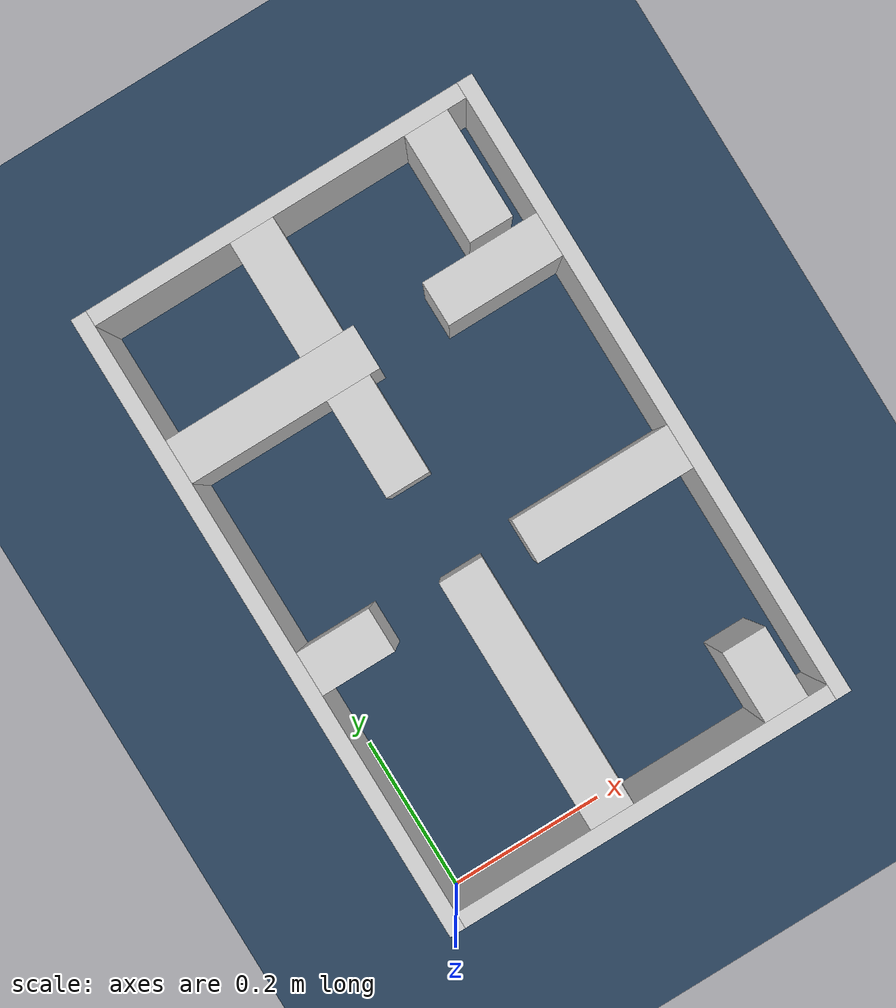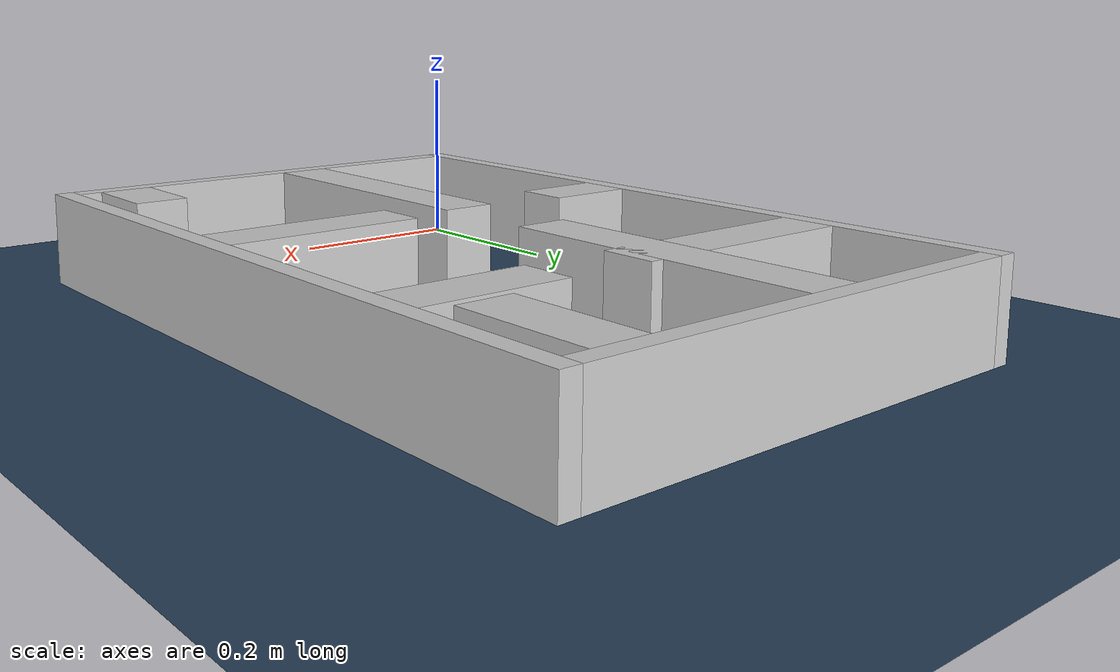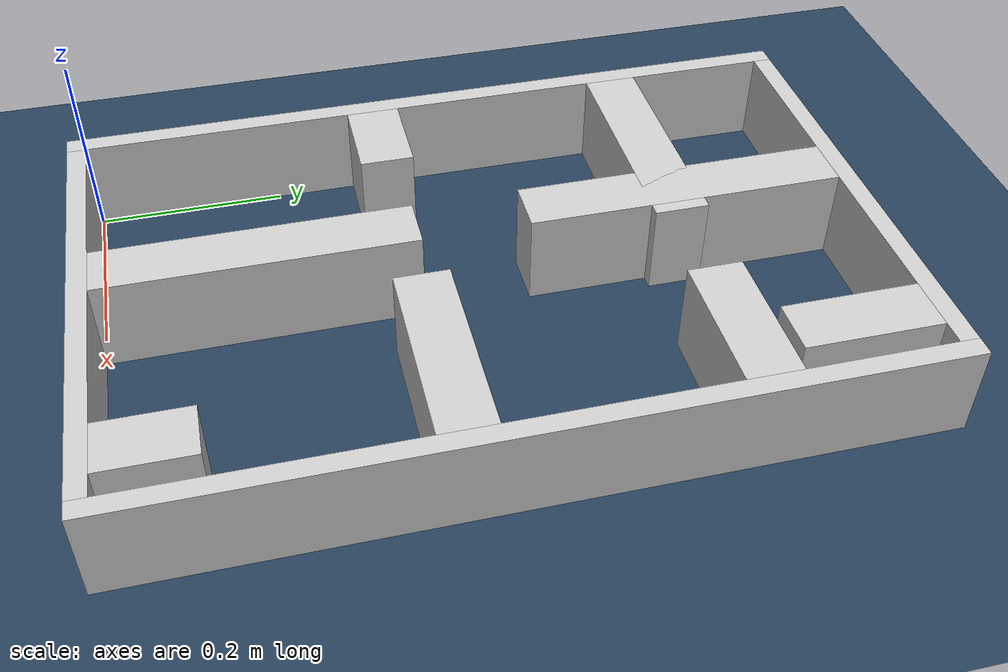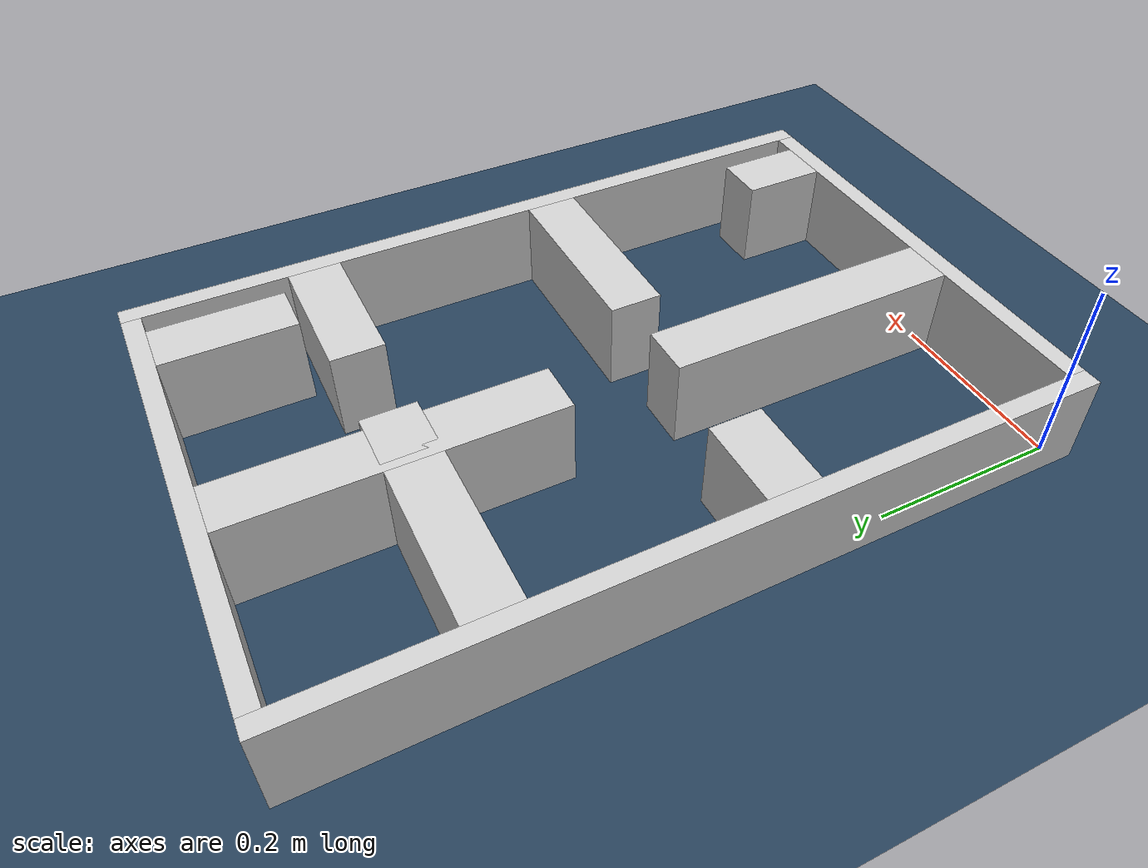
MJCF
<?xml version="1.0" ?>
<mujoco model="generated_real_template">
  <compiler angle="degree"/>
  <option timestep="0.002" integrator="implicitfast" iterations="100" cone="elliptic"/>
  <default>
    <geom density="1"/>
  </default>
  <asset>
    <texture builtin="gradient" height="3072" rgb1="0.3 0.5 0.7" rgb2="0 0 0" type="skybox" width="512"/>
    <texture builtin="checker" height="300" mark="edge" markrgb="0.8 0.8 0.8" name="groundplane" rgb1="0.2 0.3 0.4" rgb2="0.1 0.2 0.3" type="2d" width="300"/>
    <material name="groundplane" reflectance="0.2" texrepeat="5 5" texture="groundplane" texuniform="true"/>
  </asset>
  <worldbody>
    <light dir="0 0 -1" directional="true" pos="0 0 1.5"/>
    <geom name="floor" type="plane" condim="4" friction="0.5 0.005 0.001" material="groundplane" size="0 0 0.05"/>
    <body name="walls">
      <geom name="wall_boundary_left" type="box" condim="4" friction="1.0 0.005 0.0001" rgba="0.8 0.8 0.8 1" pos="-0.010000 0.387500 0.050000" euler="0 0 0.000000" size="0.010000 0.407500 0.050000"/>
      <geom name="wall_boundary_right" type="box" condim="4" friction="1.0 0.005 0.0001" rgba="0.8 0.8 0.8 1" pos="0.500000 0.387500 0.050000" euler="0 0 0.000000" size="0.010000 0.407500 0.050000"/>
      <geom name="wall_boundary_bottom" type="box" condim="4" friction="1.0 0.005 0.0001" rgba="0.8 0.8 0.8 1" pos="0.245000 -0.010000 0.050000" euler="0 0 0.000000" size="0.245000 0.010000 0.050000"/>
      <geom name="wall_boundary_top" type="box" condim="4" friction="1.0 0.005 0.0001" rgba="0.8 0.8 0.8 1" pos="0.245000 0.785000 0.050000" euler="0 0 0.000000" size="0.245000 0.010000 0.050000"/>
      <geom name="wall_inner_1_1" type="box" condim="4" friction="1.0 0.005 0.0001" rgba="0.8 0.8 0.8 1" pos="0.047894 0.315082 0.050000" euler="0 0 0.000000" size="0.047894 0.028500 0.050000"/>
      <geom name="wall_inner_1_2" type="box" condim="4" friction="1.0 0.005 0.0001" rgba="0.8 0.8 0.8 1" pos="0.387298 0.315082 0.050000" euler="0 0 0.000000" size="0.102702 0.028500 0.050000"/>
      <geom name="wall_inner_2_1" type="box" condim="4" friction="1.0 0.005 0.0001" rgba="0.8 0.8 0.8 1" pos="0.124133 0.595384 0.050000" euler="0 0 0.000000" size="0.124133 0.028500 0.050000"/>
      <geom name="wall_inner_2_2" type="box" condim="4" friction="1.0 0.005 0.0001" rgba="0.8 0.8 0.8 1" pos="0.414592 0.595384 0.050000" euler="0 0 0.000000" size="0.075408 0.028500 0.050000"/>
      <geom name="wall_inner_3_1" type="box" condim="4" friction="1.0 0.005 0.0001" rgba="0.8 0.8 0.8 1" pos="0.436799 0.046248 0.050000" euler="0 0 90.000000" size="0.046248 0.028500 0.050000"/>
      <geom name="wall_inner_3_2" type="box" condim="4" friction="1.0 0.005 0.0001" rgba="0.8 0.8 0.8 1" pos="0.436799 0.704487 0.050000" euler="0 0 90.000000" size="0.070513 0.028500 0.050000"/>
      <geom name="wall_inner_4_1" type="box" condim="4" friction="1.0 0.005 0.0001" rgba="0.8 0.8 0.8 1" pos="0.206269 0.163151 0.050000" euler="0 0 90.000000" size="0.163151 0.028500 0.050000"/>
      <geom name="wall_inner_4_2" type="box" condim="4" friction="1.0 0.005 0.0001" rgba="0.8 0.8 0.8 1" pos="0.206269 0.606732 0.050000" euler="0 0 90.000000" size="0.168268 0.028500 0.050000"/>
    </body>
  </worldbody>
</mujoco>
